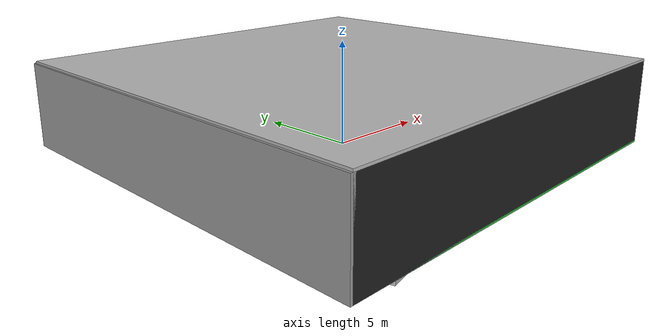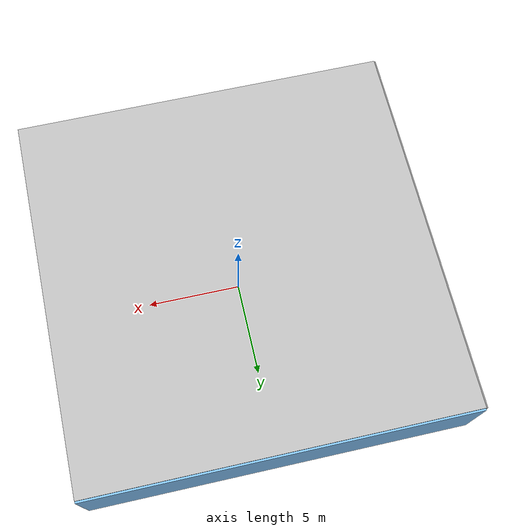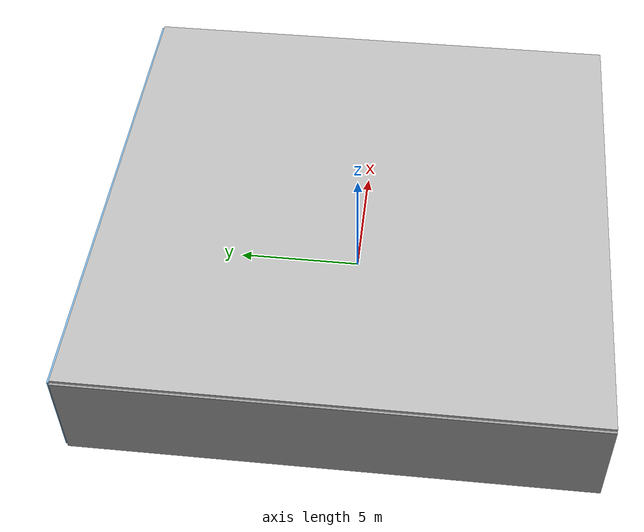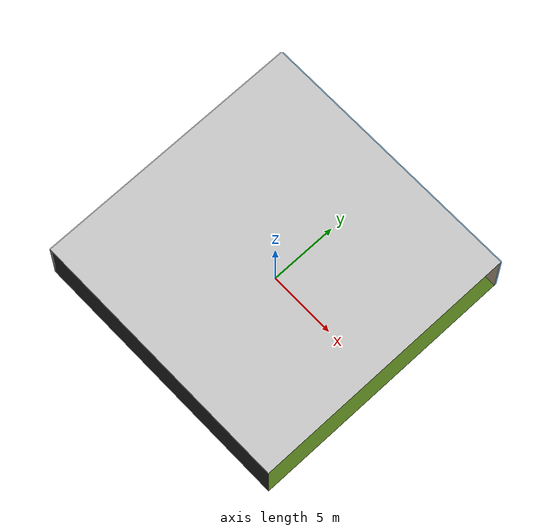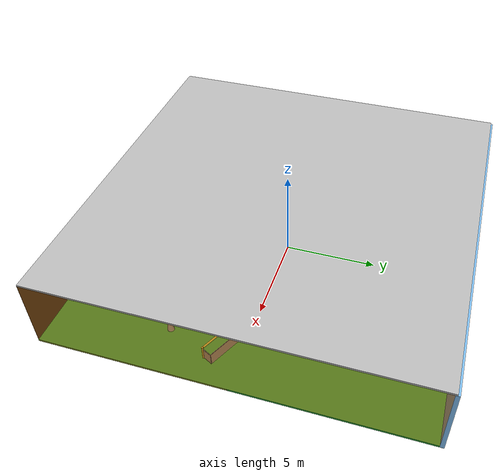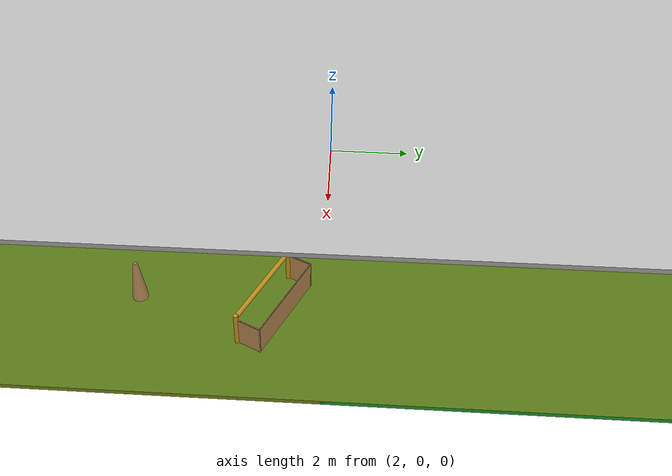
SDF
<sdf version="1.4">
 <world name="default">
  <physics type="ode">
   <max_step_size>0.001</max_step_size>
   <real_time_factor>1</real_time_factor>
   <real_time_update_rate>1000</real_time_update_rate>
   <gravity>0 0 -9.8</gravity>
  </physics>
  <scene><ambient>0.4 0.4 0.4 1</ambient><background>0.7 0.7 0.7 1</background><shadows>1</shadows></scene>
  <model name="Surrounding">
   <static>1</static>
   <link name="Ceiling">
    <collision name="Ceiling_Collision"><geometry><box><size>20 20 0.1</size></box></geometry></collision>
    <visual name="Ceiling_Visual">
     <geometry><box><size>20 20 0.1</size></box></geometry>
     <material>
      <script><uri>file://media/materials/scripts/gazebo.material</uri><name>Gazebo/LightOff</name></script>
     </material>
    </visual>
    <pose>0 0 4.05 0 0 0</pose>
   </link>
   <link name="Wall_South">
    <collision name="Wall_South_Collision">
     <geometry><box><size>20 0 4</size></box></geometry>
     <pose>0 0 2 0 -0 0</pose>
    </collision>
    <visual name="Wall_South_Visual">
     <pose>0 0 2 0 -0 0</pose>
     <geometry><box><size>20 0 4</size></box></geometry>
     <material>
      <script><uri>file://media/materials/scripts/gazebo.material</uri><name>Gazebo/FlatBlack</name></script>
     </material>
    </visual>
    <velocity_decay><linear>0</linear><angular>0</angular></velocity_decay>
    <pose>0 -10 0 0 -0 0</pose>
   </link>
   <link name="Wall_East">
    <collision name="Wall_21_Collision">
     <geometry><box><size>20 0 4</size></box></geometry>
     <pose>0 0 2 0 -0 0</pose>
    </collision>
    <visual name="Wall_21_Visual">
     <pose>0 0 2 0 -0 0</pose>
     <geometry><box><size>20 0 4</size></box></geometry>
     <material>
      <script>
       <uri>file://media/materials/scripts/gazebo.material</uri>
       <name>Gazebo/OrangeTransparent</name>
      </script>
     </material>
    </visual>
    <velocity_decay><linear>0</linear><angular>0</angular></velocity_decay>
    <pose>10 0 0 0 -0 1.5708</pose>
   </link>
   <link name="Wall_North">
    <collision name="Wall_22_Collision">
     <geometry><box><size>20 0.2 4</size></box></geometry>
     <pose>0 0 2 0 -0 0</pose>
    </collision>
    <visual name="Wall_22_Visual">
     <pose>0 0 2 0 -0 0</pose>
     <geometry><box><size>20 0.2 4</size></box></geometry>
     <material>
      <script><uri>file://media/materials/scripts/gazebo.material</uri><name>Gazebo/SkyBlue</name></script>
     </material>
    </visual>
    <velocity_decay><linear>0</linear><angular>0</angular></velocity_decay>
    <pose>0 10 0 0 -0 0</pose>
   </link>
   <link name="Wall_West">
    <collision name="Wall_23_Collision">
     <geometry><box><size>20 0.2 4</size></box></geometry>
     <pose>0 0 2 0 -0 0</pose>
    </collision>
    <visual name="Wall_23_Visual">
     <pose>0 0 2 0 -0 0</pose>
     <geometry><box><size>20 0.2 4</size></box></geometry>
     <material>
      <script><uri>file://media/materials/scripts/gazebo.material</uri><name>Gazebo/Grey</name></script>
     </material>
    </visual>
    <velocity_decay><linear>0</linear><angular>0</angular></velocity_decay>
    <pose>-10 0 0 0 0 -1.5708</pose>
   </link>
   <link name="Ground_link">
    <collision name="collision">
     <pose>0 0 .05 0 -0 0</pose>
     <geometry><box><size>20 20 0.1</size></box></geometry>
    </collision>
    <visual name="visual">
     <pose>0 0 .05 0 -0 0</pose>
     <geometry><box><size>20 20 0.1</size></box></geometry>
     <material>
      <script><uri>file://media/materials/scripts/gazebo.material</uri><name>Gazebo/GreenGlow</name></script>
     </material>
    </visual>
   </link>
   <static>1</static>
  </model>
  <spherical_coordinates>
   <surface_model>EARTH_WGS84</surface_model>
   <latitude_deg>0</latitude_deg>
   <longitude_deg>0</longitude_deg>
   <elevation>0</elevation>
   <heading_deg>0</heading_deg>
  </spherical_coordinates>
  <light name="lightball_0" type="diffuse">
   <diffuse>0.8 0.8 0.8 1</diffuse>
   <specular>0.2 0.2 0.2 1</specular>
   <attenuation>
    <range>100</range>
    <constant>0.7</constant>
    <linear>0.01</linear>
    <quadratic>0.001</quadratic>
   </attenuation>
   <direction>-0.5 0.1 -0.9</direction>
   <pose>-1.8674656881 9.68055217554 0.545335795758 0 0 0</pose>
  </light>
  <light name="lightball_1" type="diffuse">
   <diffuse>0.8 0.8 0.8 1</diffuse>
   <specular>0.2 0.2 0.2 1</specular>
   <attenuation>
    <range>100</range>
    <constant>0.7</constant>
    <linear>0.01</linear>
    <quadratic>0.001</quadratic>
   </attenuation>
   <direction>-0.5 0.1 -0.9</direction>
   <pose>6.70206858987 5.35707033078 3.0402901648 0 0 0</pose>
  </light>
  <light name="lightball_2" type="diffuse">
   <diffuse>0.8 0.8 0.8 1</diffuse>
   <specular>0.2 0.2 0.2 1</specular>
   <attenuation>
    <range>100</range>
    <constant>0.7</constant>
    <linear>0.01</linear>
    <quadratic>0.001</quadratic>
   </attenuation>
   <direction>-0.5 0.1 -0.9</direction>
   <pose>-2.30953357301 2.52110610161 1.88165342118 0 0 0</pose>
  </light>
  <light name="lightball_3" type="diffuse">
   <diffuse>0.8 0.8 0.8 1</diffuse>
   <specular>0.2 0.2 0.2 1</specular>
   <attenuation>
    <range>100</range>
    <constant>0.7</constant>
    <linear>0.01</linear>
    <quadratic>0.001</quadratic>
   </attenuation>
   <direction>-0.5 0.1 -0.9</direction>
   <pose>-6.56323256616 5.13294341005 1.4108724789 0 0 0</pose>
  </light>
  <light name="lightball_4" type="diffuse">
   <diffuse>0.8 0.8 0.8 1</diffuse>
   <specular>0.2 0.2 0.2 1</specular>
   <attenuation>
    <range>100</range>
    <constant>0.7</constant>
    <linear>0.01</linear>
    <quadratic>0.001</quadratic>
   </attenuation>
   <direction>-0.5 0.1 -0.9</direction>
   <pose>-1.71282832184 -2.21844035606 2.56901235829 0 0 0</pose>
  </light>
  <light name="lightball_5" type="diffuse">
   <diffuse>0.8 0.8 0.8 1</diffuse>
   <specular>0.2 0.2 0.2 1</specular>
   <attenuation>
    <range>100</range>
    <constant>0.7</constant>
    <linear>0.01</linear>
    <quadratic>0.001</quadratic>
   </attenuation>
   <direction>-0.5 0.1 -0.9</direction>
   <pose>6.64382914905 -7.76572790459 0.826507895854 0 0 0</pose>
  </light>
  <light name="lightball_6" type="diffuse">
   <diffuse>0.8 0.8 0.8 1</diffuse>
   <specular>0.2 0.2 0.2 1</specular>
   <attenuation>
    <range>100</range>
    <constant>0.7</constant>
    <linear>0.01</linear>
    <quadratic>0.001</quadratic>
   </attenuation>
   <direction>-0.5 0.1 -0.9</direction>
   <pose>8.07449662512 9.00091583313 0.950792327087 0 0 0</pose>
  </light>
  <light name="lightball_7" type="diffuse">
   <diffuse>0.8 0.8 0.8 1</diffuse>
   <specular>0.2 0.2 0.2 1</specular>
   <attenuation>
    <range>100</range>
    <constant>0.7</constant>
    <linear>0.01</linear>
    <quadratic>0.001</quadratic>
   </attenuation>
   <direction>-0.5 0.1 -0.9</direction>
   <pose>5.17186504216 -0.124657934672 1.70116674329 0 0 0</pose>
  </light>
  <light name="lightball_8" type="diffuse">
   <diffuse>0.8 0.8 0.8 1</diffuse>
   <specular>0.2 0.2 0.2 1</specular>
   <attenuation>
    <range>100</range>
    <constant>0.7</constant>
    <linear>0.01</linear>
    <quadratic>0.001</quadratic>
   </attenuation>
   <direction>-0.5 0.1 -0.9</direction>
   <pose>7.85652753496 0.385881946859 1.39576251718 0 0 0</pose>
  </light>
  <light name="lightball_9" type="diffuse">
   <diffuse>0.8 0.8 0.8 1</diffuse>
   <specular>0.2 0.2 0.2 1</specular>
   <attenuation>
    <range>100</range>
    <constant>0.7</constant>
    <linear>0.01</linear>
    <quadratic>0.001</quadratic>
   </attenuation>
   <direction>-0.5 0.1 -0.9</direction>
   <pose>4.017976863 1.7557343066 3.05934049547 0 0 0</pose>
  </light>
  <light name="lightball_10" type="diffuse">
   <diffuse>0.8 0.8 0.8 1</diffuse>
   <specular>0.2 0.2 0.2 1</specular>
   <attenuation>
    <range>100</range>
    <constant>0.7</constant>
    <linear>0.01</linear>
    <quadratic>0.001</quadratic>
   </attenuation>
   <direction>-0.5 0.1 -0.9</direction>
   <pose>3.75712772887 -1.00642585353 2.47782308001 0 0 0</pose>
  </light>
  <light name="lightball_11" type="diffuse">
   <diffuse>0.8 0.8 0.8 1</diffuse>
   <specular>0.2 0.2 0.2 1</specular>
   <attenuation>
    <range>100</range>
    <constant>0.7</constant>
    <linear>0.01</linear>
    <quadratic>0.001</quadratic>
   </attenuation>
   <direction>-0.5 0.1 -0.9</direction>
   <pose>5.34731437242 -1.90640045165 2.93713534413 0 0 0</pose>
  </light>
  <light name="lightball_12" type="diffuse">
   <diffuse>0.8 0.8 0.8 1</diffuse>
   <specular>0.2 0.2 0.2 1</specular>
   <attenuation>
    <range>100</range>
    <constant>0.7</constant>
    <linear>0.01</linear>
    <quadratic>0.001</quadratic>
   </attenuation>
   <direction>-0.5 0.1 -0.9</direction>
   <pose>-3.28109024915 2.17050854011 3.232300655 0 0 0</pose>
  </light>
  <light name="lightball_13" type="diffuse">
   <diffuse>0.8 0.8 0.8 1</diffuse>
   <specular>0.2 0.2 0.2 1</specular>
   <attenuation>
    <range>100</range>
    <constant>0.7</constant>
    <linear>0.01</linear>
    <quadratic>0.001</quadratic>
   </attenuation>
   <direction>-0.5 0.1 -0.9</direction>
   <pose>8.54565496279 1.24589097111 1.36749768865 0 0 0</pose>
  </light>
  <include>
   <uri>model://textured_shapes</uri>
   <pose>-7.64307288785 -7.58653751091 0 0 0 0.224567643277</pose>
  </include>
  <include>
   <uri>model://construction_cone</uri>
   <pose>-4.86881956302 -3.78953576157 0 0 0 2.22350168205</pose>
  </include>
  <include>
   <uri>model://construction_cone</uri>
   <pose>7.49574565442 -3.93005007055 0 0 0 0.529632765845</pose>
  </include>
  <include>
   <uri>model://robocup_3Dsim_goal</uri>
   <pose>7.68463338269 -1.2283177473 0 0 0 1.12160827699</pose>
  </include>
 </world>
</sdf>

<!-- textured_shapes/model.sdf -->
<sdf version="1.6">
  <model name="textured_shapes">
    <pose>0 0 0.5 0 0 0</pose>
    <link name="box">
      <pose>0 -1.5 0 0 0 0</pose>
      <collision name="collision">
        <geometry>
          <box>
            <size>1 1 1</size>
          </box>
        </geometry>
      </collision>
      <visual name="visual">
        <geometry>
          <box>
            <size>1 1 1</size>
          </box>
        </geometry>
        <material>
          <script>
            <uri>model://../model_source/models/textured_shapes/materials/scripts</uri>
            <uri>model://../model_source/models/textured_shapes/materials/textures</uri>
            <name>TexturedShape/Squares</name>
          </script>
        </material>
      </visual>
    </link>
    <link name="sphere">
      <collision name="collision">
        <geometry>
          <sphere>
            <radius>0.5</radius>
          </sphere>
        </geometry>
      </collision>
      <visual name="visual">
        <geometry>
          <sphere>
            <radius>0.5</radius>
          </sphere>
        </geometry>
        <material>
          <script>
            <uri>model://../model_source/models/textured_shapes/materials/scripts</uri>
            <uri>model://../model_source/models/textured_shapes/materials/textures</uri>
            <name>TexturedShape/Squares</name>
          </script>
        </material>
      </visual>
    </link>
    <link name="cylinder">
      <pose>0 1.5 0 0 0 0</pose>
      <collision name="collision">
        <geometry>
          <cylinder>
            <radius>0.5</radius>
            <length>1</length>
          </cylinder>
        </geometry>
      </collision>
      <visual name="visual">
        <geometry>
          <cylinder>
            <radius>0.5</radius>
            <length>1</length>
          </cylinder>
        </geometry>
        <material>
          <script>
            <uri>model://../model_source/models/textured_shapes/materials/scripts</uri>
            <uri>model://../model_source/models/textured_shapes/materials/textures</uri>
            <name>TexturedShape/Squares</name>
          </script>
        </material>
      </visual>
    </link>
  </model>
</sdf>

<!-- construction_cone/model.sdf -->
<sdf version="1.5">
  <model name="Construction Cone">
    <link name="link">
      <collision name="collision">
        <geometry>
          <mesh>
            <scale>10 10 10</scale>
            <uri>file://isr-testbed/construction_cone/meshes/construction_cone.dae</uri>
          </mesh>
        </geometry>
      </collision>
      <visual name="visual">
        <geometry>
          <mesh>
            <scale>10 10 10</scale>
            <uri>file://isr-testbed/construction_cone/meshes/construction_cone.dae</uri>
          </mesh>
        </geometry>
      </visual>
    </link>
  </model>
</sdf>

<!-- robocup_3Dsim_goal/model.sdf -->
<sdf version="1.5">
  <model name="robocup_3d_goal">
    <static>true</static>
    <link name="left_post">
      <pose>0 1.05 0.45 0 0 0</pose>
      <collision name="collision">
        <geometry>
          <cylinder>
            <radius>0.05</radius>
            <length>0.9</length>
          </cylinder>
        </geometry>
      </collision>
      <visual name="visual">
        <geometry>
          <cylinder>
            <radius>0.05</radius>
            <length>0.9</length>
          </cylinder>
        </geometry>
        <material>
          <script>
            <uri>file://media/materials/scripts/gazebo.material</uri>
            <name>Gazebo/ZincYellow</name>
          </script>
        </material>
      </visual>
    </link>
    <link name="left_support_horiz_lower">
      <pose>0.30 1.05 0.01 0 0 0</pose>
      <collision name="collision">
        <geometry>
          <box>
            <size>0.50 0.02 0.02</size>
          </box>
        </geometry>
      </collision>
      <visual name="visual">
        <geometry>
          <box>
            <size>0.50 0.02 0.02</size>
          </box>
        </geometry>
        <material>
          <script>
            <uri>file://media/materials/scripts/gazebo.material</uri>
            <name>Gazebo/White</name>
          </script>
        </material>
      </visual>
    </link>
    <link name="left_support_horiz_upper">
      <pose>0.30 1.05 0.79 0 0 0</pose>
      <collision name="collision">
        <geometry>
          <box>
            <size>0.50 0.02 0.02</size>
          </box>
        </geometry>
      </collision>
      <visual name="visual">
        <geometry>
          <box>
            <size>0.50 0.02 0.02</size>
          </box>
        </geometry>
        <material>
          <script>
            <uri>file://media/materials/scripts/gazebo.material</uri>
            <name>Gazebo/White</name>
          </script>
        </material>
      </visual>
    </link>
    <link name="left_support_vertical">
      <pose>0.56 1.05 0.4 0 1.5708 0</pose>
      <collision name="collision">
        <geometry>
          <box>
            <size>0.80 0.02 0.02</size>
          </box>
        </geometry>
      </collision>
      <visual name="visual">
        <geometry>
          <box>
            <size>0.80 0.02 0.02</size>
          </box>
        </geometry>
        <material>
          <script>
            <uri>file://media/materials/scripts/gazebo.material</uri>
            <name>Gazebo/White</name>
          </script>
        </material>
      </visual>
    </link>
    <link name="right_support_horiz_lower">
      <pose>0.30 -1.05 0.01 0 0 0</pose>
      <collision name="collision">
        <geometry>
          <box>
            <size>0.50 0.02 0.02</size>
          </box>
        </geometry>
      </collision>
      <visual name="visual">
        <geometry>
          <box>
            <size>0.50 0.02 0.02</size>
          </box>
        </geometry>
        <material>
          <script>
            <uri>file://media/materials/scripts/gazebo.material</uri>
            <name>Gazebo/White</name>
          </script>
        </material>
      </visual>
    </link>
    <link name="right_support_horiz_upper">
      <pose>0.30 -1.05 0.79 0 0 0</pose>
      <collision name="collision">
        <geometry>
          <box>
            <size>0.50 0.02 0.02</size>
          </box>
        </geometry>
      </collision>
      <visual name="visual">
        <geometry>
          <box>
            <size>0.50 0.02 0.02</size>
          </box>
        </geometry>
        <material>
          <script>
            <uri>file://media/materials/scripts/gazebo.material</uri>
            <name>Gazebo/White</name>
          </script>
        </material>
      </visual>
    </link>
    <link name="right_support_vertical">
      <pose>0.56 -1.05 0.4 0 1.5708 0</pose>
      <collision name="collision">
        <geometry>
          <box>
            <size>0.80 0.02 0.02</size>
          </box>
        </geometry>
      </collision>
      <visual name="visual">
        <geometry>
          <box>
            <size>0.80 0.02 0.02</size>
          </box>
        </geometry>
        <material>
          <script>
            <uri>file://media/materials/scripts/gazebo.material</uri>
            <name>Gazebo/White</name>
          </script>
        </material>
      </visual>
    </link>
    <link name="center_support_horiz_lower">
      <pose>0.56 0 0.01 0 1.5708 0</pose>
      <collision name="collision">
        <geometry>
          <box>
            <size>0.02 2.08 0.02</size>
          </box>
        </geometry>
      </collision>
      <visual name="visual">
        <geometry>
          <box>
            <size>0.02 2.08 0.02</size>
          </box>
        </geometry>
        <material>
          <script>
            <uri>file://media/materials/scripts/gazebo.material</uri>
            <name>Gazebo/White</name>
          </script>
        </material>
      </visual>
    </link>
    <link name="center_support_horiz_upper">
      <pose>0.56 0 0.79 0 1.5708 0</pose>
      <collision name="collision">
        <geometry>
          <box>
            <size>0.02 2.08 0.02</size>
          </box>
        </geometry>
      </collision>
      <visual name="visual">
        <geometry>
          <box>
            <size>0.02 2.08 0.02</size>
          </box>
        </geometry>
        <material>
          <script>
            <uri>file://media/materials/scripts/gazebo.material</uri>
            <name>Gazebo/White</name>
          </script>
        </material>
      </visual>
    </link>
    <link name="right_post">
      <pose>0 -1.05 0.45 0 0 0</pose>
      <collision name="collision">
        <geometry>
          <cylinder>
            <radius>0.05</radius>
            <length>0.9</length>
          </cylinder>
        </geometry>
      </collision>
      <visual name="visual">
        <geometry>
          <cylinder>
            <radius>0.05</radius>
            <length>0.9</length>
          </cylinder>
        </geometry>
        <material>
          <script>
            <uri>file://media/materials/scripts/gazebo.material</uri>
            <name>Gazebo/ZincYellow</name>
          </script>
        </material>
      </visual>
    </link>
    <link name="crossbar">
      <pose>0 0 0.85 1.57 1.57 0</pose>
      <collision name="collision">
        <geometry>
          <cylinder>
            <radius>0.05</radius>
            <length>2.0</length>
          </cylinder>
        </geometry>
      </collision>
      <visual name="visual">
        <geometry>
          <cylinder>
            <radius>0.05</radius>
            <length>2.0</length>
          </cylinder>
        </geometry>
        <material>
          <script>
            <uri>file://media/materials/scripts/gazebo.material</uri>
            <name>Gazebo/ZincYellow</name>
          </script>
        </material>
      </visual>
    </link>
    <link name="center_net">
      <pose>0.56 0 0.40 0 0 0</pose>
      <collision name="collision">
        <geometry>
          <box>
            <size>0.01 2.1 0.80</size>
          </box>
        </geometry>
      </collision>
      <visual name="visual">
        <geometry>
          <box>
            <size>0.01 2.1 0.80</size>
          </box>
        </geometry>
        <material>
          <script>
            <uri>model://../model_source/models/robocup09_spl_field/materials/scripts/</uri>
            <uri>model://../model_source/models/robocup09_spl_field/materials/textures/</uri>
            <name>RoboCup/Net</name>
          </script>
        </material>
      </visual>
    </link>
    <link name="left_net">
      <pose>0.30 1.05 0.40 0 0 0</pose>
      <collision name="collision">
        <geometry>
          <box>
            <size>0.50 0.01 0.76</size>
          </box>
        </geometry>
      </collision>
      <visual name="visual">
        <geometry>
          <box>
            <size>0.50 0.01 0.76</size>
          </box>
        </geometry>
        <material>
          <script>
            <uri>model://../model_source/models/robocup09_spl_field/materials/scripts/</uri>
            <uri>model://../model_source/models/robocup09_spl_field/materials/textures/</uri>
            <name>RoboCup/Net</name>
          </script>
        </material>
      </visual>
    </link>
    <link name="right_net">
      <pose>0.30 -1.05 0.40 0 0 0</pose>
      <collision name="collision">
        <geometry>
          <box>
            <size>0.50 0.01 0.76</size>
          </box>
        </geometry>
      </collision>
      <visual name="visual">
        <geometry>
          <box>
            <size>0.50 0.01 0.76</size>
          </box>
        </geometry>
        <material>
          <script>
            <uri>model://../model_source/models/robocup09_spl_field/materials/scripts/</uri>
            <uri>model://../model_source/models/robocup09_spl_field/materials/textures/</uri>
            <name>RoboCup/Net</name>
          </script>
        </material>
      </visual>
    </link>
  </model>
</sdf>
